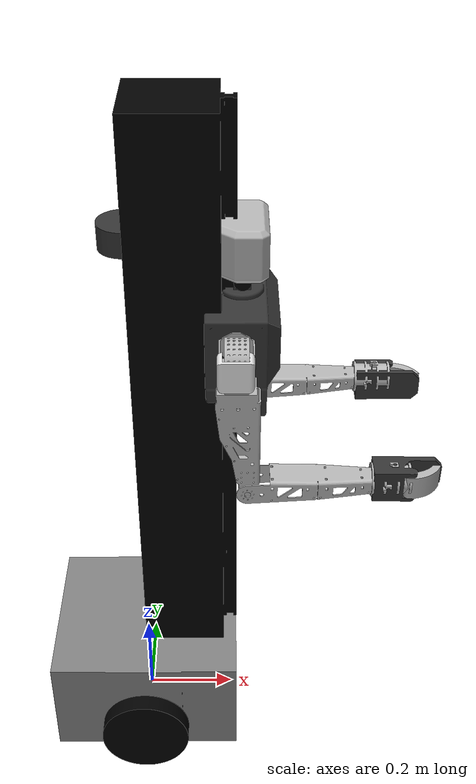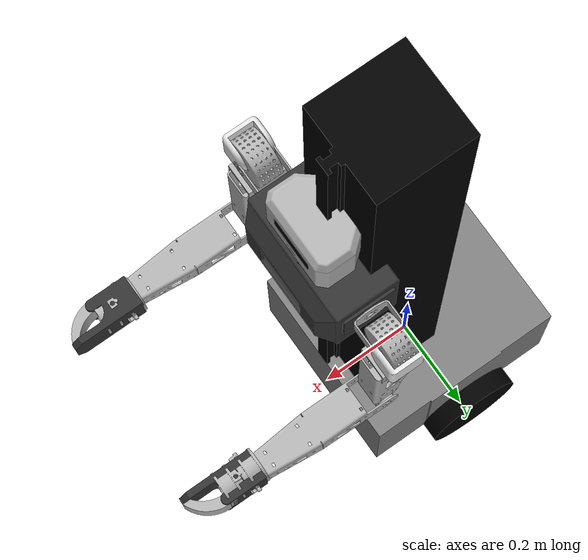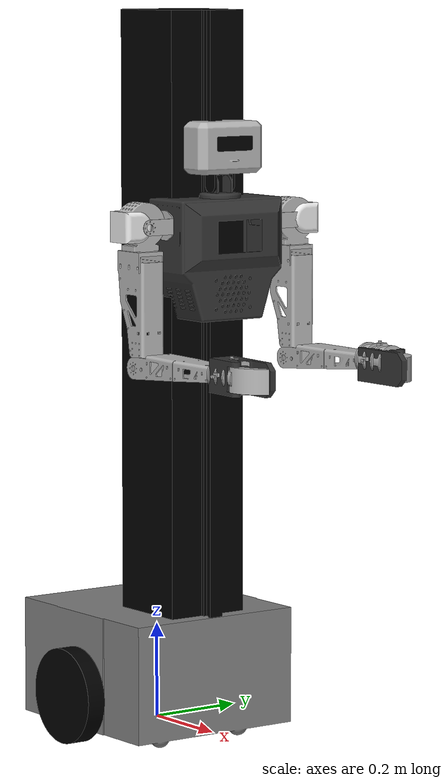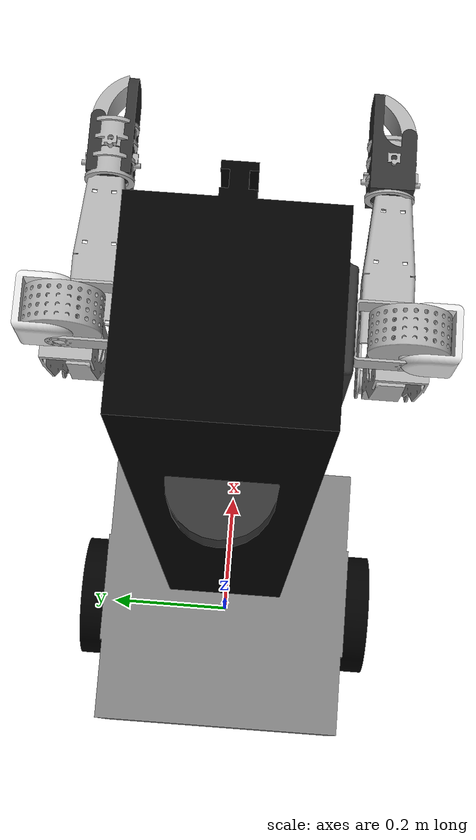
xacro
<?xml version="1.0" ?>
<robot name="vector" xmlns:xacro="http://www.ros.org/wiki/xacro">

<xacro:arg name="ros2_controllers_config" default="config/industrial_robot_ros2_controllers.yaml" />

<xacro:include filename="$(find vector_description)/urdf/materials.xacro" />
<xacro:include filename="$(find vector_description)/urdf/vector.trans" />
<xacro:include filename="$(find vector_description)/urdf/vector.gazebo" />
<xacro:include filename="$(find vector_description)/urdf/vector.ros2_control.xacro" />

<link name="base_link">
  <inertial>
    <origin xyz="0.0 0.0 -0.5" rpy="0 0 0"/>
    <mass value="100.0"/>
    <inertia ixx="1.0" iyy="1.0" izz="0.5" ixy="0.0" iyz="0.0" ixz="0.0"/>
  </inertial>
  <visual name="base_bottom_visual">
    <origin xyz="-0.212176 -0.203 -0.0275" rpy="0 0 0"/>
    <geometry>
      <mesh filename="file://$(find vector_description)/meshes/base_bottomkaran.stl" scale="0.001 0.001 0.001"/>
    </geometry>
    <material name="grey"/>
  </visual>
  <visual name="base_column_visual">
    <origin xyz="0 0 -0.0605" rpy="0 0 0"/>
    <geometry>
      <mesh filename="file://$(find vector_description)/meshes/base_column.stl" scale="0.0015 0.0015 0.00125"/>
    </geometry>
    <material name="black"/>
  </visual>
  <collision name="rear_caster_collision">
    <origin xyz="-0.18 0.0 0.0195" rpy="0 0 0"/>
    <geometry>
      <sphere radius="0.02"/>
    </geometry>
  </collision>
  <collision name="front_caster_collision">
    <origin xyz="0.18 0.0 0.0195" rpy="0 0 0"/>
    <geometry>
      <sphere radius="0.02"/>
    </geometry>
  </collision>
</link>

<link name="slider_1">
  <inertial>
    <origin xyz="0.0 0.0 0.0" rpy="0 0 0"/>
    <mass value="0.2"/>
    <inertia ixx="0.001" iyy="0.001" izz="0.001" ixy="0" iyz="0" ixz="0"/>
  </inertial>
  <visual>
    <origin xyz="-0.131878 -0.005317 -1.244" rpy="0 0 0"/>
    <geometry>
      <mesh filename="file://$(find vector_description)/meshes/slider_1.stl" scale="0.001 0.001 0.001"/>
    </geometry>
    <material name="black"/>
  </visual>
</link>

<link name="torso_1">
  <inertial>
    <origin xyz="0.0 0.0 0.0" rpy="0 0 0"/>
    <mass value="0.2"/>
    <inertia ixx="0.001" iyy="0.001" izz="0.001" ixy="0" iyz="0" ixz="0"/>
  </inertial>
  <visual>
    <origin xyz="-0.15 0.0 -0.991427" rpy="0 0 0"/>
    <geometry>
      <mesh filename="file://$(find vector_description)/meshes/torso_1.stl" scale="0.001 0.001 0.001"/>
    </geometry>
    <material name="dark_grey"/>
  </visual>
  <visual name="front_left_shoulder_cover">
    <origin xyz="0.01643 0.240 0.041815" rpy="0 0 0"/>
    <geometry>
      <mesh filename="file://$(find vector_description)/meshes/shouldercover3.stl" scale="0.00025 0.00025 0.00025"/>
    </geometry>
    <material name="light_grey"/>
  </visual>
  <visual name="back_right_shoulder_cover">
    <origin xyz="0.10643 -0.240 0.041815" rpy="0 0 3.14159265"/>
    <geometry>
      <mesh filename="file://$(find vector_description)/meshes/shouldercover3.stl" scale="0.00025 0.00025 0.00025"/>
    </geometry>
    <material name="light_grey"/>
  </visual>
</link>

<link name="left_arm_link_1_1">
  <inertial>
    <origin xyz="0.0 0.0 0.0" rpy="0 0 0"/>
    <mass value="0.2"/>
    <inertia ixx="0.001" iyy="0.001" izz="0.001" ixy="0" iyz="0" ixz="0"/>
  </inertial>
  <visual>
    <origin xyz="-0.21143 -0.13 -1.063242" rpy="0 0 0"/>
    <geometry>
      <mesh filename="file://$(find vector_description)/meshes/left_arm_link_1_1.stl" scale="0.001 0.001 0.001"/>
    </geometry>
    <material name="silver"/>
  </visual>
</link>

<link name="left_shoulder_1">
  <inertial>
    <origin xyz="0.0 0.0 0.0" rpy="0 0 0"/>
    <mass value="0.2"/>
    <inertia ixx="0.001" iyy="0.001" izz="0.001" ixy="0" iyz="0" ixz="0"/>
  </inertial>
  <visual>
    <origin xyz="-0.18828 -0.191 -1.063242" rpy="0 0 0"/>
    <geometry>
      <mesh filename="file://$(find vector_description)/meshes/left_shoulder_1.stl" scale="0.001 0.001 0.001"/>
    </geometry>
    <material name="silver"/>
  </visual>
</link>

<link name="right_arm_link_1_1">
  <inertial>
    <origin xyz="0.0 0.0 0.0" rpy="0 0 0"/>
    <mass value="0.2"/>
    <inertia ixx="0.001" iyy="0.001" izz="0.001" ixy="0" iyz="0" ixz="0"/>
  </inertial>
  <visual>
    <origin xyz="-0.21143 0.125642 -1.063242" rpy="0 0 0"/>
    <geometry>
      <mesh filename="file://$(find vector_description)/meshes/right_arm_link_1_1.stl" scale="0.001 0.001 0.001"/>
    </geometry>
    <material name="silver"/>
  </visual>
</link>

<link name="right_shoulder_1">
  <inertial>
    <origin xyz="0.0 0.0 0.0" rpy="0 0 0"/>
    <mass value="0.2"/>
    <inertia ixx="0.001" iyy="0.001" izz="0.001" ixy="0" iyz="0" ixz="0"/>
  </inertial>
  <visual>
    <origin xyz="-0.18828 0.186642 -1.063242" rpy="0 0 0"/>
    <geometry>
      <mesh filename="file://$(find vector_description)/meshes/right_shoulder_1.stl" scale="0.001 0.001 0.001"/>
    </geometry>
    <material name="silver"/>
  </visual>
</link>

<link name="right_bicep_1">
  <inertial>
    <origin xyz="0.0 0.0 0.0" rpy="0 0 0"/>
    <mass value="0.2"/>
    <inertia ixx="0.001" iyy="0.001" izz="0.001" ixy="0" iyz="0" ixz="0"/>
  </inertial>
  <visual>
    <origin xyz="-0.21143 0.186998 -1.014718" rpy="0 0 0"/>
    <geometry>
      <mesh filename="file://$(find vector_description)/meshes/right_bicep_1.stl" scale="0.001 0.001 0.001"/>
    </geometry>
    <material name="silver"/>
  </visual>
  <collision>
    <origin xyz="-0.21143 0.186998 -1.014718" rpy="0 0 0"/>
    <geometry>
      <mesh filename="file://$(find vector_description)/meshes/right_bicep_1.stl" scale="0.001 0.001 0.001"/>
    </geometry>
  </collision>
</link>

<link name="left_bicep_1">
  <inertial>
    <origin xyz="0.0 0.0 0.0" rpy="0 0 0"/>
    <mass value="0.2"/>
    <inertia ixx="0.001" iyy="0.001" izz="0.001" ixy="0" iyz="0" ixz="0"/>
  </inertial>
  <visual>
    <origin xyz="-0.21143 -0.191 -1.010242" rpy="0 0 0"/>
    <geometry>
      <mesh filename="file://$(find vector_description)/meshes/left_bicep_1.stl" scale="0.001 0.001 0.001"/>
    </geometry>
    <material name="silver"/>
  </visual>
  <collision>
    <origin xyz="-0.21143 -0.191 -1.010242" rpy="0 0 0"/>
    <geometry>
      <mesh filename="file://$(find vector_description)/meshes/left_bicep_1.stl" scale="0.001 0.001 0.001"/>
    </geometry>
  </collision>
</link>

<link name="right_forearm_v1_1">
  <inertial>
    <origin xyz="0.0 0.0 0.0" rpy="0 0 0"/>
    <mass value="0.2"/>
    <inertia ixx="0.001" iyy="0.001" izz="0.001" ixy="0" iyz="0" ixz="0"/>
  </inertial>
  <visual>
    <origin xyz="-0.233013 0.217698 -0.781318" rpy="0 0 0"/>
    <geometry>
      <mesh filename="file://$(find vector_description)/meshes/right_forearm_v1_1.stl" scale="0.001 0.001 0.001"/>
    </geometry>
    <material name="silver"/>
  </visual>
  <collision>
    <origin xyz="-0.233013 0.217698 -0.781318" rpy="0 0 0"/>
    <geometry>
      <mesh filename="file://$(find vector_description)/meshes/right_forearm_v1_1.stl" scale="0.001 0.001 0.001"/>
    </geometry>
  </collision>
</link>

<link name="left_forearm_v2_1">
  <inertial>
    <origin xyz="0.0 0.0 0.0" rpy="0 0 0"/>
    <mass value="0.2"/>
    <inertia ixx="0.001" iyy="0.001" izz="0.001" ixy="0" iyz="0" ixz="0"/>
  </inertial>
  <visual>
    <origin xyz="-0.233013 -0.1603 -0.776842" rpy="0 0 0"/>
    <geometry>
      <mesh filename="file://$(find vector_description)/meshes/left_forearm_v2_1.stl" scale="0.001 0.001 0.001"/>
    </geometry>
    <material name="silver"/>
  </visual>
  <collision>
    <origin xyz="-0.233013 -0.1603 -0.776842" rpy="0 0 0"/>
    <geometry>
      <mesh filename="file://$(find vector_description)/meshes/left_forearm_v2_1.stl" scale="0.001 0.001 0.001"/>
    </geometry>
  </collision>
</link>

<link name="neck_v2_1">
  <inertial>
    <origin xyz="0.0 0.0 0.0" rpy="0 0 0"/>
    <mass value="0.2"/>
    <inertia ixx="0.001" iyy="0.001" izz="0.001" ixy="0" iyz="0" ixz="0"/>
  </inertial>
  <visual>
    <origin xyz="-0.223 -0.022179 -1.142427" rpy="0 0 0"/>
    <geometry>
      <mesh filename="file://$(find vector_description)/meshes/neck_v2_1.stl" scale="0.001 0.001 0.001"/>
    </geometry>
    <material name="black"/>
  </visual>
</link>

<link name="head_v1_1">
  <inertial>
    <origin xyz="0.0 0.0 0.0" rpy="0 0 0"/>
    <mass value="0.2"/>
    <inertia ixx="0.001" iyy="0.001" izz="0.001" ixy="0" iyz="0" ixz="0"/>
  </inertial>
  <visual>
    <origin xyz="-0.223 -0.002179 -1.165427" rpy="0 0 0"/>
    <geometry>
      <mesh filename="file://$(find vector_description)/meshes/head_v1_1.stl" scale="0.001 0.001 0.001"/>
    </geometry>
    <material name="silver"/>
  </visual>
</link>

<!-- INSERT THIS FOR NEW GAZEBO ENGINE OVERRIDES -->
<gazebo reference="head_v1_1">
  <visual>
    <material>
      <ambient>1 1 1 0</ambient>
      <diffuse>1 1 1 0</diffuse>
      <specular>0 0 0 0</specular>
      <emissive>0 0 0 0</emissive>
    </material>
  </visual>
</gazebo>

<link name="livox_mid360_link">
  <inertial>
    <origin xyz="0.0 0.0 0.0" rpy="0 0 0"/>
    <mass value="0.265"/>
    <inertia ixx="0.0002" iyy="0.0002" izz="0.0003" ixy="0" iyz="0" ixz="0"/>
  </inertial>
  <visual name="livox_mid360_visual">
    <origin xyz="0 0 0" rpy="0 0 0"/>
    <geometry>
      <cylinder radius="0.053" length="0.052"/>
    </geometry>
    <material name="dark_grey"/>
  </visual>
</link>

<joint name="livox_mid360_joint" type="fixed">
  <origin xyz="-0.131878 -0.005317 -0.01" rpy="0 0 0"/>
  <parent link="slider_1"/>
  <child link="livox_mid360_link"/>
</joint>

<link name="right_wheel_1">
  <inertial>
    <origin xyz="-2.7445143105647544e-17 -0.01999999999999988 -1.3877787807814457e-17" rpy="0 0 0"/>
    <mass value="1.168672467135403"/>
    <inertia ixx="0.003078" iyy="0.005843" izz="0.003078" ixy="0.0" iyz="0.0" ixz="-0.0"/>
  </inertial>
  <visual>
    <origin xyz="-0.0 0.203 -0.0725" rpy="0 0 0"/>
    <geometry>
      <mesh filename="file://$(find vector_description)/meshes/right_wheel_1.stl" scale="0.001 0.001 0.001"/>
    </geometry>
    <material name="black"/>
  </visual>
  <collision>
    <origin xyz="0 0 0" rpy="1.5707963 0 0"/>
    <geometry>
      <cylinder radius="0.075" length="0.08"/>
    </geometry>
  </collision>
</link>

<link name="left_wheel_1">
  <inertial>
    <origin xyz="6.228708332783829e-17 0.01999999999999988 0.0" rpy="0 0 0"/>
    <mass value="1.168672467135403"/>
    <inertia ixx="0.003078" iyy="0.005843" izz="0.003078" ixy="0.0" iyz="0.0" ixz="-0.0"/>
  </inertial>
  <visual>
    <origin xyz="-0.0 -0.203 -0.0725" rpy="0 0 0"/>
    <geometry>
      <mesh filename="file://$(find vector_description)/meshes/left_wheel_1.stl" scale="0.001 0.001 0.001"/>
    </geometry>
    <material name="black"/>
  </visual>
  <collision>
    <origin xyz="0 0 0" rpy="1.5707963 0 0"/>
    <geometry>
      <cylinder radius="0.075" length="0.08"/>
    </geometry>
  </collision>
</link>

<link name="camera_1">
  <inertial>
    <origin xyz="0.0 0.0 0.0" rpy="0 0 0"/>
    <mass value="0.2"/>
    <inertia ixx="0.001" iyy="0.001" izz="0.001" ixy="0" iyz="0" ixz="0"/>
  </inertial>
  <visual>
    <origin xyz="-0.268 -0.003429 -1.227137" rpy="0 0 0"/>
    <geometry>
      <mesh filename="file://$(find vector_description)/meshes/camera_1.stl" scale="0.001 0.001 0.001"/>
    </geometry>
    <material name="black"/>
  </visual>
</link>

<link name="left_hand_palm_1">
  <inertial>
    <origin xyz="0.0 0.0 0.0" rpy="0 0 0"/>
    <mass value="0.2"/>
    <inertia ixx="0.001" iyy="0.001" izz="0.001" ixy="0" iyz="0" ixz="0"/>
  </inertial>
  <visual>
    <origin xyz="-0.48 -0.18 -0.8" rpy="0 0 0"/>
    <geometry>
      <mesh filename="file://$(find vector_description)/meshes/left_hand_palm_1.stl" scale="0.001 0.001 0.001"/>
    </geometry>
    <material name="dark_grey"/>
  </visual>
</link>

<link name="left_hand_finger_1">
  <inertial>
    <origin xyz="0.0 0.0 0.0" rpy="0 0 0"/>
    <mass value="0.2"/>
    <inertia ixx="0.001" iyy="0.001" izz="0.001" ixy="0" iyz="0" ixz="0"/>
  </inertial>
  <visual>
    <origin xyz="-0.552276 -0.2 -0.816596" rpy="0 0 0"/>
    <geometry>
      <mesh filename="file://$(find vector_description)/meshes/left_hand_finger_1.stl" scale="0.001 0.001 0.001"/>
    </geometry>
    <material name="silver"/>
  </visual>
</link>

<link name="right_hand_palm_1">
  <inertial>
    <origin xyz="0.0 0.0 0.0" rpy="0 0 0"/>
    <mass value="0.2"/>
    <inertia ixx="0.001" iyy="0.001" izz="0.001" ixy="0" iyz="0" ixz="0"/>
  </inertial>
  <visual>
    <origin xyz="-0.482 0.177 -0.79" rpy="0 0 0"/>
    <geometry>
      <mesh filename="file://$(find vector_description)/meshes/right_hand_palm_1.stl" scale="0.001 0.001 0.001"/>
    </geometry>
    <material name="dark_grey"/>
  </visual>
</link>

<link name="right_hand_finger_1">
  <inertial>
    <origin xyz="0.0 0.0 0.0" rpy="0 0 0"/>
    <mass value="0.2"/>
    <inertia ixx="0.001" iyy="0.001" izz="0.001" ixy="0" iyz="0" ixz="0"/>
  </inertial>
  <visual>
    <origin xyz="-0.552087 0.195998 -0.763566" rpy="0 0 0"/>
    <geometry>
      <mesh filename="file://$(find vector_description)/meshes/right_hand_finger_1.stl" scale="0.001 0.001 0.001"/>
    </geometry>
    <material name="silver"/>
  </visual>
</link>

<joint name="slider_z_axis" type="prismatic">
  <origin xyz="0.131878 0.005317 1.244" rpy="0 0 0"/>
  <parent link="base_link"/>
  <child link="slider_1"/>
  <axis xyz="0.0 0.0 1.0"/>
  <limit upper="0.4" lower="-0.6" effort="2000" velocity="100"/>
  <dynamics damping="50.0" friction="10.0"/>
</joint>

<joint name="torso_with_slider" type="fixed">
  <origin xyz="0.018122 -0.005317 -0.252573" rpy="0 0 0"/>
  <parent link="slider_1"/>
  <child link="torso_1"/>
</joint>

<joint name="left_shoulder_holder" type="revolute">
  <origin xyz="0.06143 0.13 0.071815" rpy="0 0 0"/>
  <parent link="torso_1"/>
  <child link="left_arm_link_1_1"/>
  <axis xyz="-0.0 1.0 0.0"/>
  <limit upper="-3.110" lower="1.000" effort="100" velocity="100"/>
  <dynamics damping="10.0" friction="5.0"/>
</joint>

<joint name="left_shoulder" type="revolute">
  <origin xyz="-0.02315 0.061 0.0" rpy="0 0 0"/>
  <parent link="left_arm_link_1_1"/>
  <child link="left_shoulder_1"/>
  <axis xyz="1.0 -0.0 0.0"/>
  <limit upper="3.410" lower="-0.250" effort="100" velocity="100"/>
  <dynamics damping="10.0" friction="5.0"/>
</joint>

<joint name="right_shoulder_holder" type="revolute">
  <origin xyz="0.06143 -0.125642 0.071815" rpy="0 0 0"/>
  <parent link="torso_1"/>
  <child link="right_arm_link_1_1"/>
  <axis xyz="0.0 -1.0 -0.0"/>
  <limit upper="3.110" lower="-1.000" effort="100" velocity="100"/>
  <dynamics damping="10.0" friction="5.0"/>
</joint>

<joint name="right_shoulder" type="revolute">
  <origin xyz="-0.02315 -0.061 0.0" rpy="0 0 0"/>
  <parent link="right_arm_link_1_1"/>
  <child link="right_shoulder_1"/>
  <axis xyz="1.0 0.0 0.0"/>
  <limit upper="-3.410" lower="0.150" effort="100" velocity="100"/>
  <dynamics damping="10.0" friction="5.0"/>
</joint>

<joint name="right_bicep" type="revolute">
  <origin xyz="0.02315 -0.000356 -0.048524" rpy="0 0 0"/>
  <parent link="right_shoulder_1"/>
  <child link="right_bicep_1"/>
  <axis xyz="0.0 0.0 -1.0"/>
  <limit upper="1.510" lower="-1.500" effort="100" velocity="100"/>
  <dynamics damping="10.0" friction="5.0"/>
</joint>

<joint name="left_bicep" type="revolute">
  <origin xyz="0.02315 0.0 -0.053" rpy="0 0 0"/>
  <parent link="left_shoulder_1"/>
  <child link="left_bicep_1"/>
  <axis xyz="-0.0 0.0 -1.0"/>
  <limit upper="-1.510" lower="1.500" effort="100" velocity="100"/>
  <dynamics damping="10.0" friction="5.0"/>
</joint>

<joint name="right_forearn" type="revolute">
  <origin xyz="0.021583 -0.0307 -0.2334" rpy="0 0 0"/>
  <parent link="right_bicep_1"/>
  <child link="right_forearm_v1_1"/>
  <axis xyz="0.0 -1.0 -0.0"/>
  <limit upper="0.425" lower="-3.500" effort="100" velocity="100"/>
  <dynamics damping="10.0" friction="5.0"/>
</joint>

<joint name="left_forearm" type="revolute">
  <origin xyz="0.021583 -0.0307 -0.2334" rpy="0 0 0"/>
  <parent link="left_bicep_1"/>
  <child link="left_forearm_v2_1"/>
  <axis xyz="-0.0 -1.0 -0.0"/>
  <limit upper="0.425" lower="-3.500" effort="100" velocity="100"/>
  <dynamics damping="10.0" friction="5.0"/>
</joint>

<joint name="neck" type="revolute">
  <origin xyz="0.073 0.022179 0.151" rpy="0 0 0"/>
  <parent link="torso_1"/>
  <child link="neck_v2_1"/>
  <axis xyz="-0.0 1.0 0.0"/>
  <limit upper="0.950" lower="-0.250" effort="100" velocity="100"/>
  <dynamics damping="5.0" friction="2.0"/>
</joint>

<joint name="head" type="revolute">
  <origin xyz="0.0 -0.02 0.023" rpy="0 0 0"/>
  <parent link="neck_v2_1"/>
  <child link="head_v1_1"/>
  <axis xyz="-0.0 -0.0 1.0"/>
  <limit upper="1.000" lower="-1.000" effort="100" velocity="100"/>
  <dynamics damping="5.0" friction="2.0"/>
</joint>

<joint name="right_wheel" type="continuous">
  <origin xyz="0.0 -0.203 0.0725" rpy="0 0 0"/>
  <parent link="base_link"/>
  <child link="right_wheel_1"/>
  <axis xyz="0.0 1.0 0.0"/>
</joint>

<joint name="left_wheel" type="continuous">
  <origin xyz="0.0 0.203 0.0725" rpy="0 0 0"/>
  <parent link="base_link"/>
  <child link="left_wheel_1"/>
  <axis xyz="0.0 1.0 0.0"/>
</joint>

<joint name="camera" type="fixed">
  <origin xyz="0.045 0.00125 0.06171" rpy="0 0 0"/>
  <parent link="head_v1_1"/>
  <child link="camera_1"/>
</joint>

<joint name="left_wrist_pitch" type="revolute">
  <origin xyz="0.248 0.0265 0.02" rpy="0 0 0"/>
  <parent link="left_forearm_v2_1"/>
  <child link="left_wrist_1"/>
  <axis xyz="0.0 1.0 0.0"/>
  <limit upper="1.57" lower="-1.57" effort="100" velocity="100"/>
  <dynamics damping="5.0" friction="2.0"/>
</joint>

<joint name="left_wrist_yaw" type="revolute">
  <origin xyz="0 0 0" rpy="0 0 0"/>
  <parent link="left_wrist_1"/>
  <child link="left_wrist_2"/>
  <axis xyz="0.0 0.0 1.0"/>
  <limit upper="1.57" lower="-1.57" effort="100" velocity="100"/>
  <dynamics damping="5.0" friction="2.0"/>
</joint>

<joint name="left_hand_palm" type="revolute">
  <origin xyz="0 0 0" rpy="0 0 0"/>
  <parent link="left_wrist_2"/>
  <child link="left_hand_palm_1"/>
  <axis xyz="0.999999 -0.0 0.001396"/>
  <limit upper="3.14" lower="-3.14" effort="100" velocity="100"/>
  <dynamics damping="5.0" friction="2.0"/>
</joint>

<joint name="left_hand_finger" type="revolute">
  <origin xyz="0.075 0.02 0.016" rpy="0 0 0"/>
  <parent link="left_hand_palm_1"/>
  <child link="left_hand_finger_1"/>
  <axis xyz="-0.0 0.0 -1.0"/>
  <limit upper="0.0" lower="-2.0" effort="100" velocity="100"/>
</joint>

<joint name="right_wrist_pitch" type="revolute">
  <origin xyz="0.25 0.035 0.01" rpy="0 0 0"/>
  <parent link="right_forearm_v1_1"/>
  <child link="right_wrist_1"/>
  <axis xyz="0.0 1.0 0.0"/>
  <limit upper="1.57" lower="-1.57" effort="100" velocity="100"/>
  <dynamics damping="5.0" friction="2.0"/>
</joint>

<joint name="right_wrist_yaw" type="revolute">
  <origin xyz="0 0 0" rpy="0 0 0"/>
  <parent link="right_wrist_1"/>
  <child link="right_wrist_2"/>
  <axis xyz="0.0 0.0 1.0"/>
  <limit upper="1.57" lower="-1.57" effort="100" velocity="100"/>
  <dynamics damping="5.0" friction="2.0"/>
</joint>

<joint name="right_hand_palm" type="revolute">
  <origin xyz="0 0 0" rpy="0 0 0"/>
  <parent link="right_wrist_2"/>
  <child link="right_hand_palm_1"/>
  <axis xyz="0.999871 0.0 -0.016056"/>
  <limit upper="3.14" lower="-3.14" effort="100" velocity="100"/>
  <dynamics damping="5.0" friction="2.0"/>
</joint>

<joint name="right_hand_finger" type="revolute">
  <origin xyz="0.07 -0.02 -0.0268" rpy="0 0 0"/>
  <parent link="right_hand_palm_1"/>
  <child link="right_hand_finger_1"/>
  <axis xyz="0.01466 0.0 0.999893"/>
  <limit upper="0.0" lower="-2.0" effort="100" velocity="100"/>
</joint>

<link name="left_wrist_1">
  <inertial>
    <origin xyz="0.0 0.0 0.0" rpy="0 0 0"/>
    <mass value="0.1"/>
    <inertia ixx="0.001" iyy="0.001" izz="0.001" ixy="0" iyz="0" ixz="0"/>
  </inertial>
</link>

<link name="left_wrist_2">
  <inertial>
    <origin xyz="0.0 0.0 0.0" rpy="0 0 0"/>
    <mass value="0.1"/>
    <inertia ixx="0.001" iyy="0.001" izz="0.001" ixy="0" iyz="0" ixz="0"/>
  </inertial>
  <visual>
    <origin xyz="0 0 0" rpy="0 0 0"/>
    <geometry>
      <mesh filename="file://$(find vector_description)/meshes/this.stl" scale="0.001 0.001 0.001"/>
    </geometry>
    <material name="silver"/>
  </visual>
  <collision>
    <origin xyz="0 0 0" rpy="0 0 0"/>
    <geometry>
      <mesh filename="file://$(find vector_description)/meshes/this.stl" scale="0.001 0.001 0.001"/>
    </geometry>
  </collision>
</link>

<link name="right_wrist_1">
  <inertial>
    <origin xyz="0.0 0.0 0.0" rpy="0 0 0"/>
    <mass value="0.1"/>
    <inertia ixx="0.001" iyy="0.001" izz="0.001" ixy="0" iyz="0" ixz="0"/>
  </inertial>
</link>

<link name="right_wrist_2">
  <inertial>
    <origin xyz="0.0 0.0 0.0" rpy="0 0 0"/>
    <mass value="0.1"/>
    <inertia ixx="0.001" iyy="0.001" izz="0.001" ixy="0" iyz="0" ixz="0"/>
  </inertial>
  <visual>
    <origin xyz="0 0 0" rpy="0 0 0"/>
    <geometry>
      <mesh filename="file://$(find vector_description)/meshes/this.stl" scale="0.001 0.001 0.001"/>
    </geometry>
    <material name="silver"/>
  </visual>
  <collision>
    <origin xyz="0 0 0" rpy="0 0 0"/>
    <geometry>
      <mesh filename="file://$(find vector_description)/meshes/this.stl" scale="0.001 0.001 0.001"/>
    </geometry>
  </collision>
</link>

</robot>

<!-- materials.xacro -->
<robot name="vector" xmlns:xacro="http://www.ros.org/wiki/xacro" >

<material name="silver">
  <color rgba="0.700 0.700 0.700 1.000"/>
</material>

<material name="white">
  <color rgba="1.000 1.000 1.000 1.000"/>
</material>

<material name="light_grey">
  <color rgba="0.900 0.900 0.900 1.000"/>
</material>

<material name="dark_grey">
  <color rgba="0.200 0.200 0.200 1.000"/>
</material>

<material name="grey">
  <color rgba="0.500 0.500 0.500 1.000"/>
</material>

<material name="black">
  <color rgba="0.0 0.0 0.0 1.000"/>
</material>

</robot>
